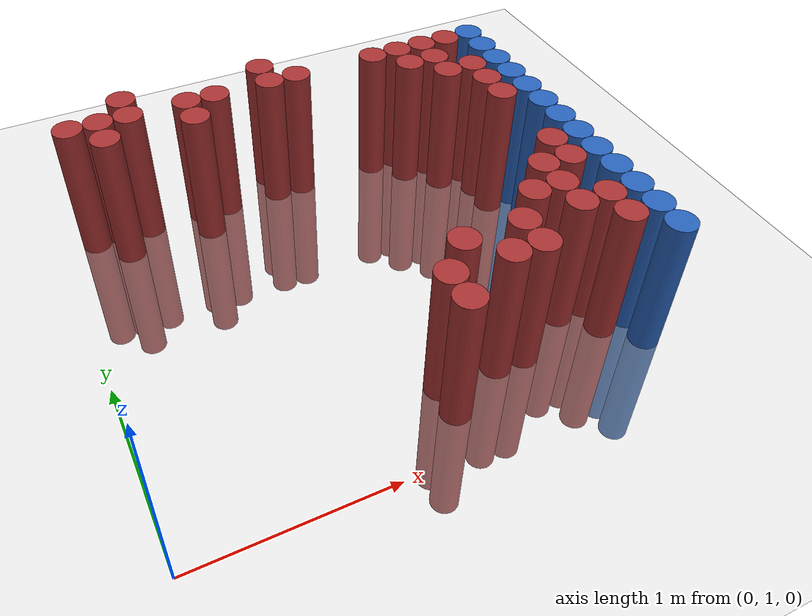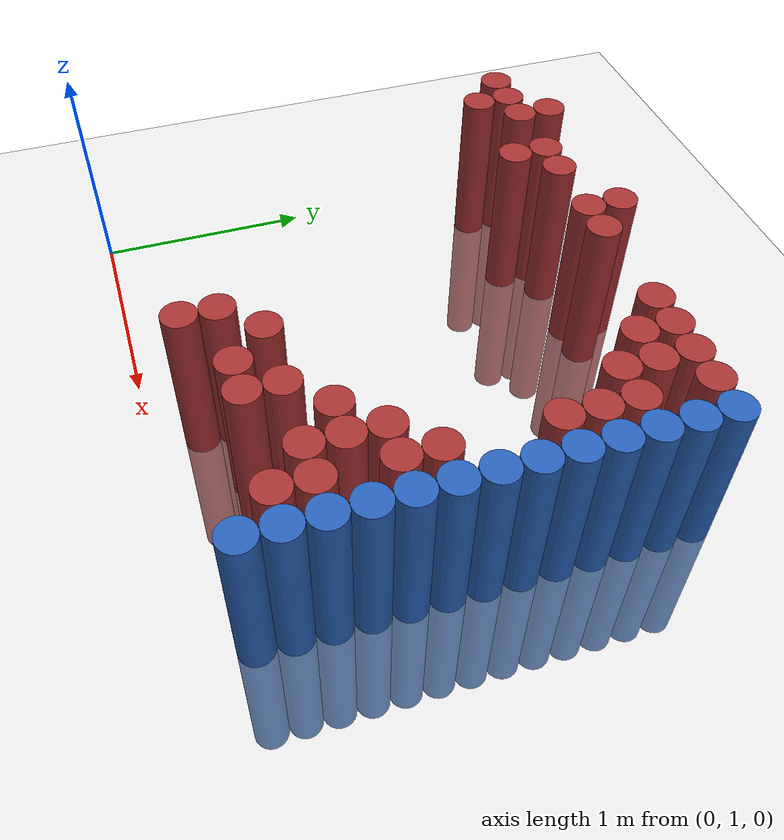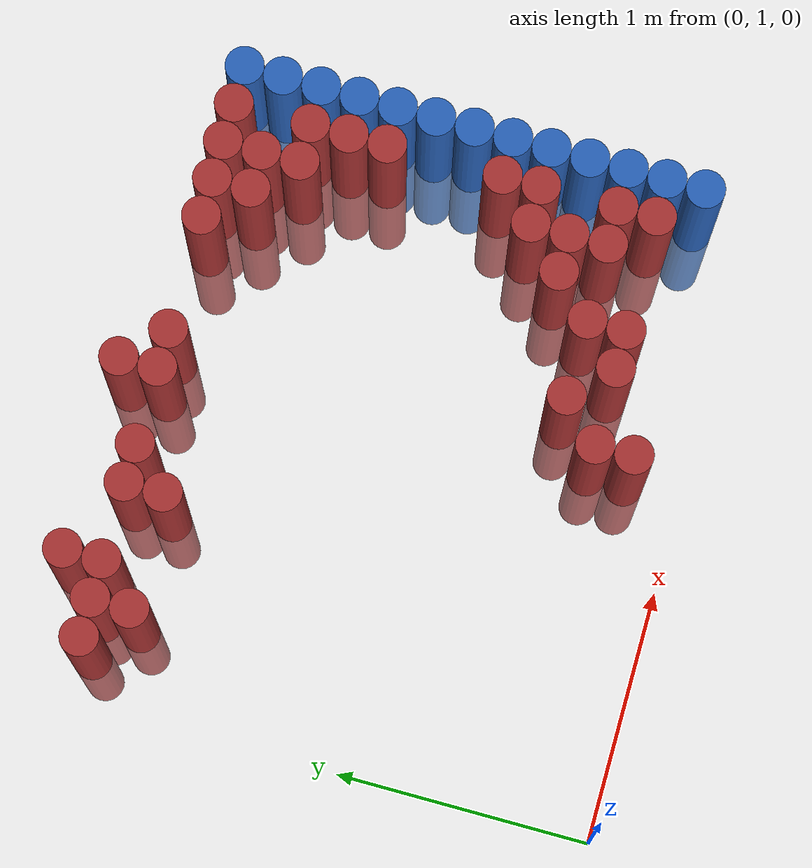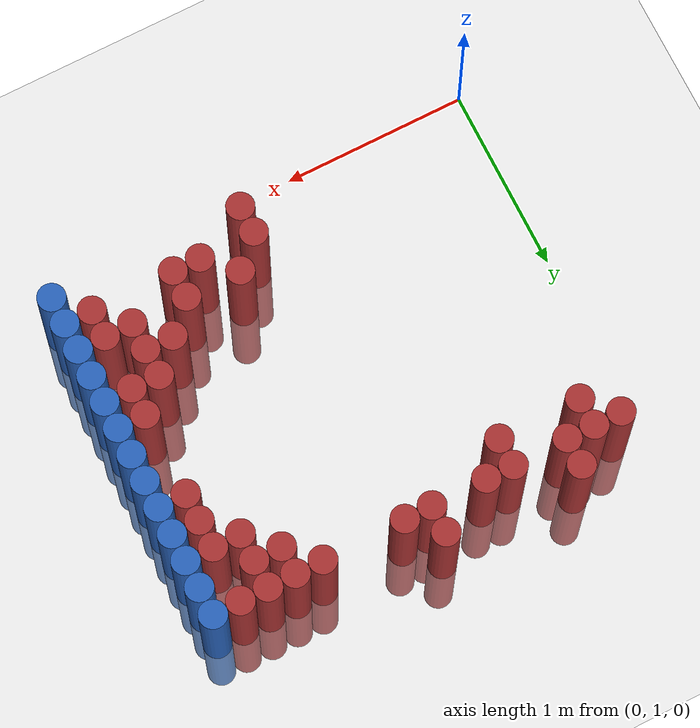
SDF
<sdf version="1.6">
 <world name="default">
  <model name="ground_plane">
   <static>1</static>
   <link name="link">
    <collision name="collision">
     <geometry><plane><normal>0 0 1</normal><size>100 100</size></plane></geometry>
     <surface><friction><ode><mu>100</mu><mu2>50</mu2></ode></friction></surface>
    </collision>
    <visual name="visual">
     <cast_shadows>0</cast_shadows>
     <geometry><plane><normal>0 0 1</normal><size>100 100</size></plane></geometry>
     <material>
      <script><uri>file://media/materials/scripts/gazebo.material</uri><name>Gazebo/Grey</name></script>
     </material>
    </visual>
   </link>
  </model>
  <model name="unit_cylinder_175">
   <static>1</static>
   <pose>0.175000 3.025000 0.000000 0.000000 0.000000 0.000000</pose>
   <link name="link">
    <inertial>
     <mass>1</mass>
     <inertia><ixx>0.145833</ixx><ixy>0</ixy><ixz>0</ixz><iyy>0.145833</iyy><iyz>0</iyz><izz>0.125</izz></inertia>
    </inertial>
    <collision name="collision">
     <geometry><cylinder><radius>0.075000</radius><length>1.5</length></cylinder></geometry>
    </collision>
    <visual name="visual">
     <geometry><cylinder><radius>0.075000</radius><length>1.5</length></cylinder></geometry>
     <material>
      <ambient>0.648000 0.192000 0.192000 1</ambient>
      <diffuse>0.648000 0.192000 0.192000 1</diffuse>
     </material>
     <material>
      <script><name>Gazebo/Grey</name><uri>file://media/materials/scripts/gazebo.material</uri></script>
     </material>
    </visual>
   </link>
  </model>
  <model name="unit_cylinder_178">
   <static>1</static>
   <pose>0.325000 2.875000 0.000000 0.000000 0.000000 0.000000</pose>
   <link name="link">
    <inertial>
     <mass>1</mass>
     <inertia><ixx>0.145833</ixx><ixy>0</ixy><ixz>0</ixz><iyy>0.145833</iyy><iyz>0</iyz><izz>0.125</izz></inertia>
    </inertial>
    <collision name="collision">
     <geometry><cylinder><radius>0.075000</radius><length>1.5</length></cylinder></geometry>
    </collision>
    <visual name="visual">
     <geometry><cylinder><radius>0.075000</radius><length>1.5</length></cylinder></geometry>
     <material>
      <ambient>0.648000 0.192000 0.192000 1</ambient>
      <diffuse>0.648000 0.192000 0.192000 1</diffuse>
     </material>
     <material>
      <script><name>Gazebo/Grey</name><uri>file://media/materials/scripts/gazebo.material</uri></script>
     </material>
    </visual>
   </link>
  </model>
  <model name="unit_cylinder_179">
   <static>1</static>
   <pose>0.325000 3.025000 0.000000 0.000000 0.000000 0.000000</pose>
   <link name="link">
    <inertial>
     <mass>1</mass>
     <inertia><ixx>0.145833</ixx><ixy>0</ixy><ixz>0</ixz><iyy>0.145833</iyy><iyz>0</iyz><izz>0.125</izz></inertia>
    </inertial>
    <collision name="collision">
     <geometry><cylinder><radius>0.075000</radius><length>1.5</length></cylinder></geometry>
    </collision>
    <visual name="visual">
     <geometry><cylinder><radius>0.075000</radius><length>1.5</length></cylinder></geometry>
     <material>
      <ambient>0.648000 0.192000 0.192000 1</ambient>
      <diffuse>0.648000 0.192000 0.192000 1</diffuse>
     </material>
     <material>
      <script><name>Gazebo/Grey</name><uri>file://media/materials/scripts/gazebo.material</uri></script>
     </material>
    </visual>
   </link>
  </model>
  <model name="unit_cylinder_182">
   <static>1</static>
   <pose>0.475000 3.025000 0.000000 0.000000 0.000000 0.000000</pose>
   <link name="link">
    <inertial>
     <mass>1</mass>
     <inertia><ixx>0.145833</ixx><ixy>0</ixy><ixz>0</ixz><iyy>0.145833</iyy><iyz>0</iyz><izz>0.125</izz></inertia>
    </inertial>
    <collision name="collision">
     <geometry><cylinder><radius>0.075000</radius><length>1.5</length></cylinder></geometry>
    </collision>
    <visual name="visual">
     <geometry><cylinder><radius>0.075000</radius><length>1.5</length></cylinder></geometry>
     <material>
      <ambient>0.648000 0.192000 0.192000 1</ambient>
      <diffuse>0.648000 0.192000 0.192000 1</diffuse>
     </material>
     <material>
      <script><name>Gazebo/Grey</name><uri>file://media/materials/scripts/gazebo.material</uri></script>
     </material>
    </visual>
   </link>
  </model>
  <model name="unit_cylinder_183">
   <static>1</static>
   <pose>0.475000 3.175000 0.000000 0.000000 0.000000 0.000000</pose>
   <link name="link">
    <inertial>
     <mass>1</mass>
     <inertia><ixx>0.145833</ixx><ixy>0</ixy><ixz>0</ixz><iyy>0.145833</iyy><iyz>0</iyz><izz>0.125</izz></inertia>
    </inertial>
    <collision name="collision">
     <geometry><cylinder><radius>0.075000</radius><length>1.5</length></cylinder></geometry>
    </collision>
    <visual name="visual">
     <geometry><cylinder><radius>0.075000</radius><length>1.5</length></cylinder></geometry>
     <material>
      <ambient>0.648000 0.192000 0.192000 1</ambient>
      <diffuse>0.648000 0.192000 0.192000 1</diffuse>
     </material>
     <material>
      <script><name>Gazebo/Grey</name><uri>file://media/materials/scripts/gazebo.material</uri></script>
     </material>
    </visual>
   </link>
  </model>
  <model name="unit_cylinder_190">
   <static>1</static>
   <pose>0.775000 2.875000 0.000000 0.000000 0.000000 0.000000</pose>
   <link name="link">
    <inertial>
     <mass>1</mass>
     <inertia><ixx>0.145833</ixx><ixy>0</ixy><ixz>0</ixz><iyy>0.145833</iyy><iyz>0</iyz><izz>0.125</izz></inertia>
    </inertial>
    <collision name="collision">
     <geometry><cylinder><radius>0.075000</radius><length>1.5</length></cylinder></geometry>
    </collision>
    <visual name="visual">
     <geometry><cylinder><radius>0.075000</radius><length>1.5</length></cylinder></geometry>
     <material>
      <ambient>0.648000 0.192000 0.192000 1</ambient>
      <diffuse>0.648000 0.192000 0.192000 1</diffuse>
     </material>
     <material>
      <script><name>Gazebo/Grey</name><uri>file://media/materials/scripts/gazebo.material</uri></script>
     </material>
    </visual>
   </link>
  </model>
  <model name="unit_cylinder_191">
   <static>1</static>
   <pose>0.775000 3.025000 0.000000 0.000000 0.000000 0.000000</pose>
   <link name="link">
    <inertial>
     <mass>1</mass>
     <inertia><ixx>0.145833</ixx><ixy>0</ixy><ixz>0</ixz><iyy>0.145833</iyy><iyz>0</iyz><izz>0.125</izz></inertia>
    </inertial>
    <collision name="collision">
     <geometry><cylinder><radius>0.075000</radius><length>1.5</length></cylinder></geometry>
    </collision>
    <visual name="visual">
     <geometry><cylinder><radius>0.075000</radius><length>1.5</length></cylinder></geometry>
     <material>
      <ambient>0.648000 0.192000 0.192000 1</ambient>
      <diffuse>0.648000 0.192000 0.192000 1</diffuse>
     </material>
     <material>
      <script><name>Gazebo/Grey</name><uri>file://media/materials/scripts/gazebo.material</uri></script>
     </material>
    </visual>
   </link>
  </model>
  <model name="unit_cylinder_197">
   <static>1</static>
   <pose>0.925000 3.025000 0.000000 0.000000 0.000000 0.000000</pose>
   <link name="link">
    <inertial>
     <mass>1</mass>
     <inertia><ixx>0.145833</ixx><ixy>0</ixy><ixz>0</ixz><iyy>0.145833</iyy><iyz>0</iyz><izz>0.125</izz></inertia>
    </inertial>
    <collision name="collision">
     <geometry><cylinder><radius>0.075000</radius><length>1.5</length></cylinder></geometry>
    </collision>
    <visual name="visual">
     <geometry><cylinder><radius>0.075000</radius><length>1.5</length></cylinder></geometry>
     <material>
      <ambient>0.648000 0.192000 0.192000 1</ambient>
      <diffuse>0.648000 0.192000 0.192000 1</diffuse>
     </material>
     <material>
      <script><name>Gazebo/Grey</name><uri>file://media/materials/scripts/gazebo.material</uri></script>
     </material>
    </visual>
   </link>
  </model>
  <model name="unit_cylinder_204">
   <static>1</static>
   <pose>1.225000 3.025000 0.000000 0.000000 0.000000 0.000000</pose>
   <link name="link">
    <inertial>
     <mass>1</mass>
     <inertia><ixx>0.145833</ixx><ixy>0</ixy><ixz>0</ixz><iyy>0.145833</iyy><iyz>0</iyz><izz>0.125</izz></inertia>
    </inertial>
    <collision name="collision">
     <geometry><cylinder><radius>0.075000</radius><length>1.5</length></cylinder></geometry>
    </collision>
    <visual name="visual">
     <geometry><cylinder><radius>0.075000</radius><length>1.5</length></cylinder></geometry>
     <material>
      <ambient>0.648000 0.192000 0.192000 1</ambient>
      <diffuse>0.648000 0.192000 0.192000 1</diffuse>
     </material>
     <material>
      <script><name>Gazebo/Grey</name><uri>file://media/materials/scripts/gazebo.material</uri></script>
     </material>
    </visual>
   </link>
  </model>
  <model name="unit_cylinder_205">
   <static>1</static>
   <pose>1.225000 3.175000 0.000000 0.000000 0.000000 0.000000</pose>
   <link name="link">
    <inertial>
     <mass>1</mass>
     <inertia><ixx>0.145833</ixx><ixy>0</ixy><ixz>0</ixz><iyy>0.145833</iyy><iyz>0</iyz><izz>0.125</izz></inertia>
    </inertial>
    <collision name="collision">
     <geometry><cylinder><radius>0.075000</radius><length>1.5</length></cylinder></geometry>
    </collision>
    <visual name="visual">
     <geometry><cylinder><radius>0.075000</radius><length>1.5</length></cylinder></geometry>
     <material>
      <ambient>0.648000 0.192000 0.192000 1</ambient>
      <diffuse>0.648000 0.192000 0.192000 1</diffuse>
     </material>
     <material>
      <script><name>Gazebo/Grey</name><uri>file://media/materials/scripts/gazebo.material</uri></script>
     </material>
    </visual>
   </link>
  </model>
  <model name="unit_cylinder_209">
   <static>1</static>
   <pose>1.375000 1.225000 0.000000 0.000000 0.000000 0.000000</pose>
   <link name="link">
    <inertial>
     <mass>1</mass>
     <inertia><ixx>0.145833</ixx><ixy>0</ixy><ixz>0</ixz><iyy>0.145833</iyy><iyz>0</iyz><izz>0.125</izz></inertia>
    </inertial>
    <collision name="collision">
     <geometry><cylinder><radius>0.075000</radius><length>1.5</length></cylinder></geometry>
    </collision>
    <visual name="visual">
     <geometry><cylinder><radius>0.075000</radius><length>1.5</length></cylinder></geometry>
     <material>
      <ambient>0.648000 0.192000 0.192000 1</ambient>
      <diffuse>0.648000 0.192000 0.192000 1</diffuse>
     </material>
     <material>
      <script><name>Gazebo/Grey</name><uri>file://media/materials/scripts/gazebo.material</uri></script>
     </material>
    </visual>
   </link>
  </model>
  <model name="unit_cylinder_210">
   <static>1</static>
   <pose>1.375000 1.375000 0.000000 0.000000 0.000000 0.000000</pose>
   <link name="link">
    <inertial>
     <mass>1</mass>
     <inertia><ixx>0.145833</ixx><ixy>0</ixy><ixz>0</ixz><iyy>0.145833</iyy><iyz>0</iyz><izz>0.125</izz></inertia>
    </inertial>
    <collision name="collision">
     <geometry><cylinder><radius>0.075000</radius><length>1.5</length></cylinder></geometry>
    </collision>
    <visual name="visual">
     <geometry><cylinder><radius>0.075000</radius><length>1.5</length></cylinder></geometry>
     <material>
      <ambient>0.648000 0.192000 0.192000 1</ambient>
      <diffuse>0.648000 0.192000 0.192000 1</diffuse>
     </material>
     <material>
      <script><name>Gazebo/Grey</name><uri>file://media/materials/scripts/gazebo.material</uri></script>
     </material>
    </visual>
   </link>
  </model>
  <model name="unit_cylinder_211">
   <static>1</static>
   <pose>1.375000 3.025000 0.000000 0.000000 0.000000 0.000000</pose>
   <link name="link">
    <inertial>
     <mass>1</mass>
     <inertia><ixx>0.145833</ixx><ixy>0</ixy><ixz>0</ixz><iyy>0.145833</iyy><iyz>0</iyz><izz>0.125</izz></inertia>
    </inertial>
    <collision name="collision">
     <geometry><cylinder><radius>0.075000</radius><length>1.5</length></cylinder></geometry>
    </collision>
    <visual name="visual">
     <geometry><cylinder><radius>0.075000</radius><length>1.5</length></cylinder></geometry>
     <material>
      <ambient>0.648000 0.192000 0.192000 1</ambient>
      <diffuse>0.648000 0.192000 0.192000 1</diffuse>
     </material>
     <material>
      <script><name>Gazebo/Grey</name><uri>file://media/materials/scripts/gazebo.material</uri></script>
     </material>
    </visual>
   </link>
  </model>
  <model name="unit_cylinder_214">
   <static>1</static>
   <pose>1.525000 1.525000 0.000000 0.000000 0.000000 0.000000</pose>
   <link name="link">
    <inertial>
     <mass>1</mass>
     <inertia><ixx>0.145833</ixx><ixy>0</ixy><ixz>0</ixz><iyy>0.145833</iyy><iyz>0</iyz><izz>0.125</izz></inertia>
    </inertial>
    <collision name="collision">
     <geometry><cylinder><radius>0.075000</radius><length>1.5</length></cylinder></geometry>
    </collision>
    <visual name="visual">
     <geometry><cylinder><radius>0.075000</radius><length>1.5</length></cylinder></geometry>
     <material>
      <ambient>0.648000 0.192000 0.192000 1</ambient>
      <diffuse>0.648000 0.192000 0.192000 1</diffuse>
     </material>
     <material>
      <script><name>Gazebo/Grey</name><uri>file://media/materials/scripts/gazebo.material</uri></script>
     </material>
    </visual>
   </link>
  </model>
  <model name="unit_cylinder_217">
   <static>1</static>
   <pose>1.675000 1.375000 0.000000 0.000000 0.000000 0.000000</pose>
   <link name="link">
    <inertial>
     <mass>1</mass>
     <inertia><ixx>0.145833</ixx><ixy>0</ixy><ixz>0</ixz><iyy>0.145833</iyy><iyz>0</iyz><izz>0.125</izz></inertia>
    </inertial>
    <collision name="collision">
     <geometry><cylinder><radius>0.075000</radius><length>1.5</length></cylinder></geometry>
    </collision>
    <visual name="visual">
     <geometry><cylinder><radius>0.075000</radius><length>1.5</length></cylinder></geometry>
     <material>
      <ambient>0.648000 0.192000 0.192000 1</ambient>
      <diffuse>0.648000 0.192000 0.192000 1</diffuse>
     </material>
     <material>
      <script><name>Gazebo/Grey</name><uri>file://media/materials/scripts/gazebo.material</uri></script>
     </material>
    </visual>
   </link>
  </model>
  <model name="unit_cylinder_220">
   <static>1</static>
   <pose>1.825000 1.375000 0.000000 0.000000 0.000000 0.000000</pose>
   <link name="link">
    <inertial>
     <mass>1</mass>
     <inertia><ixx>0.145833</ixx><ixy>0</ixy><ixz>0</ixz><iyy>0.145833</iyy><iyz>0</iyz><izz>0.125</izz></inertia>
    </inertial>
    <collision name="collision">
     <geometry><cylinder><radius>0.075000</radius><length>1.5</length></cylinder></geometry>
    </collision>
    <visual name="visual">
     <geometry><cylinder><radius>0.075000</radius><length>1.5</length></cylinder></geometry>
     <material>
      <ambient>0.648000 0.192000 0.192000 1</ambient>
      <diffuse>0.648000 0.192000 0.192000 1</diffuse>
     </material>
     <material>
      <script><name>Gazebo/Grey</name><uri>file://media/materials/scripts/gazebo.material</uri></script>
     </material>
    </visual>
   </link>
  </model>
  <model name="unit_cylinder_221">
   <static>1</static>
   <pose>1.825000 1.525000 0.000000 0.000000 0.000000 0.000000</pose>
   <link name="link">
    <inertial>
     <mass>1</mass>
     <inertia><ixx>0.145833</ixx><ixy>0</ixy><ixz>0</ixz><iyy>0.145833</iyy><iyz>0</iyz><izz>0.125</izz></inertia>
    </inertial>
    <collision name="collision">
     <geometry><cylinder><radius>0.075000</radius><length>1.5</length></cylinder></geometry>
    </collision>
    <visual name="visual">
     <geometry><cylinder><radius>0.075000</radius><length>1.5</length></cylinder></geometry>
     <material>
      <ambient>0.648000 0.192000 0.192000 1</ambient>
      <diffuse>0.648000 0.192000 0.192000 1</diffuse>
     </material>
     <material>
      <script><name>Gazebo/Grey</name><uri>file://media/materials/scripts/gazebo.material</uri></script>
     </material>
    </visual>
   </link>
  </model>
  <model name="unit_cylinder_222">
   <static>1</static>
   <pose>1.825000 3.025000 0.000000 0.000000 0.000000 0.000000</pose>
   <link name="link">
    <inertial>
     <mass>1</mass>
     <inertia><ixx>0.145833</ixx><ixy>0</ixy><ixz>0</ixz><iyy>0.145833</iyy><iyz>0</iyz><izz>0.125</izz></inertia>
    </inertial>
    <collision name="collision">
     <geometry><cylinder><radius>0.075000</radius><length>1.5</length></cylinder></geometry>
    </collision>
    <visual name="visual">
     <geometry><cylinder><radius>0.075000</radius><length>1.5</length></cylinder></geometry>
     <material>
      <ambient>0.648000 0.192000 0.192000 1</ambient>
      <diffuse>0.648000 0.192000 0.192000 1</diffuse>
     </material>
     <material>
      <script><name>Gazebo/Grey</name><uri>file://media/materials/scripts/gazebo.material</uri></script>
     </material>
    </visual>
   </link>
  </model>
  <model name="unit_cylinder_225">
   <static>1</static>
   <pose>1.975000 1.675000 0.000000 0.000000 0.000000 0.000000</pose>
   <link name="link">
    <inertial>
     <mass>1</mass>
     <inertia><ixx>0.145833</ixx><ixy>0</ixy><ixz>0</ixz><iyy>0.145833</iyy><iyz>0</iyz><izz>0.125</izz></inertia>
    </inertial>
    <collision name="collision">
     <geometry><cylinder><radius>0.075000</radius><length>1.5</length></cylinder></geometry>
    </collision>
    <visual name="visual">
     <geometry><cylinder><radius>0.075000</radius><length>1.5</length></cylinder></geometry>
     <material>
      <ambient>0.648000 0.192000 0.192000 1</ambient>
      <diffuse>0.648000 0.192000 0.192000 1</diffuse>
     </material>
     <material>
      <script><name>Gazebo/Grey</name><uri>file://media/materials/scripts/gazebo.material</uri></script>
     </material>
    </visual>
   </link>
  </model>
  <model name="unit_cylinder_226">
   <static>1</static>
   <pose>1.975000 2.875000 0.000000 0.000000 0.000000 0.000000</pose>
   <link name="link">
    <inertial>
     <mass>1</mass>
     <inertia><ixx>0.145833</ixx><ixy>0</ixy><ixz>0</ixz><iyy>0.145833</iyy><iyz>0</iyz><izz>0.125</izz></inertia>
    </inertial>
    <collision name="collision">
     <geometry><cylinder><radius>0.075000</radius><length>1.5</length></cylinder></geometry>
    </collision>
    <visual name="visual">
     <geometry><cylinder><radius>0.075000</radius><length>1.5</length></cylinder></geometry>
     <material>
      <ambient>0.648000 0.192000 0.192000 1</ambient>
      <diffuse>0.648000 0.192000 0.192000 1</diffuse>
     </material>
     <material>
      <script><name>Gazebo/Grey</name><uri>file://media/materials/scripts/gazebo.material</uri></script>
     </material>
    </visual>
   </link>
  </model>
  <model name="unit_cylinder_227">
   <static>1</static>
   <pose>1.975000 3.025000 0.000000 0.000000 0.000000 0.000000</pose>
   <link name="link">
    <inertial>
     <mass>1</mass>
     <inertia><ixx>0.145833</ixx><ixy>0</ixy><ixz>0</ixz><iyy>0.145833</iyy><iyz>0</iyz><izz>0.125</izz></inertia>
    </inertial>
    <collision name="collision">
     <geometry><cylinder><radius>0.075000</radius><length>1.5</length></cylinder></geometry>
    </collision>
    <visual name="visual">
     <geometry><cylinder><radius>0.075000</radius><length>1.5</length></cylinder></geometry>
     <material>
      <ambient>0.648000 0.192000 0.192000 1</ambient>
      <diffuse>0.648000 0.192000 0.192000 1</diffuse>
     </material>
     <material>
      <script><name>Gazebo/Grey</name><uri>file://media/materials/scripts/gazebo.material</uri></script>
     </material>
    </visual>
   </link>
  </model>
  <model name="unit_cylinder_233">
   <static>1</static>
   <pose>2.125000 1.525000 0.000000 0.000000 0.000000 0.000000</pose>
   <link name="link">
    <inertial>
     <mass>1</mass>
     <inertia><ixx>0.145833</ixx><ixy>0</ixy><ixz>0</ixz><iyy>0.145833</iyy><iyz>0</iyz><izz>0.125</izz></inertia>
    </inertial>
    <collision name="collision">
     <geometry><cylinder><radius>0.075000</radius><length>1.5</length></cylinder></geometry>
    </collision>
    <visual name="visual">
     <geometry><cylinder><radius>0.075000</radius><length>1.5</length></cylinder></geometry>
     <material>
      <ambient>0.648000 0.192000 0.192000 1</ambient>
      <diffuse>0.648000 0.192000 0.192000 1</diffuse>
     </material>
     <material>
      <script><name>Gazebo/Grey</name><uri>file://media/materials/scripts/gazebo.material</uri></script>
     </material>
    </visual>
   </link>
  </model>
  <model name="unit_cylinder_234">
   <static>1</static>
   <pose>2.125000 1.675000 0.000000 0.000000 0.000000 0.000000</pose>
   <link name="link">
    <inertial>
     <mass>1</mass>
     <inertia><ixx>0.145833</ixx><ixy>0</ixy><ixz>0</ixz><iyy>0.145833</iyy><iyz>0</iyz><izz>0.125</izz></inertia>
    </inertial>
    <collision name="collision">
     <geometry><cylinder><radius>0.075000</radius><length>1.5</length></cylinder></geometry>
    </collision>
    <visual name="visual">
     <geometry><cylinder><radius>0.075000</radius><length>1.5</length></cylinder></geometry>
     <material>
      <ambient>0.648000 0.192000 0.192000 1</ambient>
      <diffuse>0.648000 0.192000 0.192000 1</diffuse>
     </material>
     <material>
      <script><name>Gazebo/Grey</name><uri>file://media/materials/scripts/gazebo.material</uri></script>
     </material>
    </visual>
   </link>
  </model>
  <model name="unit_cylinder_235">
   <static>1</static>
   <pose>2.125000 1.825000 0.000000 0.000000 0.000000 0.000000</pose>
   <link name="link">
    <inertial>
     <mass>1</mass>
     <inertia><ixx>0.145833</ixx><ixy>0</ixy><ixz>0</ixz><iyy>0.145833</iyy><iyz>0</iyz><izz>0.125</izz></inertia>
    </inertial>
    <collision name="collision">
     <geometry><cylinder><radius>0.075000</radius><length>1.5</length></cylinder></geometry>
    </collision>
    <visual name="visual">
     <geometry><cylinder><radius>0.075000</radius><length>1.5</length></cylinder></geometry>
     <material>
      <ambient>0.648000 0.192000 0.192000 1</ambient>
      <diffuse>0.648000 0.192000 0.192000 1</diffuse>
     </material>
     <material>
      <script><name>Gazebo/Grey</name><uri>file://media/materials/scripts/gazebo.material</uri></script>
     </material>
    </visual>
   </link>
  </model>
  <model name="unit_cylinder_236">
   <static>1</static>
   <pose>2.125000 2.725000 0.000000 0.000000 0.000000 0.000000</pose>
   <link name="link">
    <inertial>
     <mass>1</mass>
     <inertia><ixx>0.145833</ixx><ixy>0</ixy><ixz>0</ixz><iyy>0.145833</iyy><iyz>0</iyz><izz>0.125</izz></inertia>
    </inertial>
    <collision name="collision">
     <geometry><cylinder><radius>0.075000</radius><length>1.5</length></cylinder></geometry>
    </collision>
    <visual name="visual">
     <geometry><cylinder><radius>0.075000</radius><length>1.5</length></cylinder></geometry>
     <material>
      <ambient>0.648000 0.192000 0.192000 1</ambient>
      <diffuse>0.648000 0.192000 0.192000 1</diffuse>
     </material>
     <material>
      <script><name>Gazebo/Grey</name><uri>file://media/materials/scripts/gazebo.material</uri></script>
     </material>
    </visual>
   </link>
  </model>
  <model name="unit_cylinder_237">
   <static>1</static>
   <pose>2.125000 2.875000 0.000000 0.000000 0.000000 0.000000</pose>
   <link name="link">
    <inertial>
     <mass>1</mass>
     <inertia><ixx>0.145833</ixx><ixy>0</ixy><ixz>0</ixz><iyy>0.145833</iyy><iyz>0</iyz><izz>0.125</izz></inertia>
    </inertial>
    <collision name="collision">
     <geometry><cylinder><radius>0.075000</radius><length>1.5</length></cylinder></geometry>
    </collision>
    <visual name="visual">
     <geometry><cylinder><radius>0.075000</radius><length>1.5</length></cylinder></geometry>
     <material>
      <ambient>0.648000 0.192000 0.192000 1</ambient>
      <diffuse>0.648000 0.192000 0.192000 1</diffuse>
     </material>
     <material>
      <script><name>Gazebo/Grey</name><uri>file://media/materials/scripts/gazebo.material</uri></script>
     </material>
    </visual>
   </link>
  </model>
  <model name="unit_cylinder_238">
   <static>1</static>
   <pose>2.125000 3.025000 0.000000 0.000000 0.000000 0.000000</pose>
   <link name="link">
    <inertial>
     <mass>1</mass>
     <inertia><ixx>0.145833</ixx><ixy>0</ixy><ixz>0</ixz><iyy>0.145833</iyy><iyz>0</iyz><izz>0.125</izz></inertia>
    </inertial>
    <collision name="collision">
     <geometry><cylinder><radius>0.075000</radius><length>1.5</length></cylinder></geometry>
    </collision>
    <visual name="visual">
     <geometry><cylinder><radius>0.075000</radius><length>1.5</length></cylinder></geometry>
     <material>
      <ambient>0.648000 0.192000 0.192000 1</ambient>
      <diffuse>0.648000 0.192000 0.192000 1</diffuse>
     </material>
     <material>
      <script><name>Gazebo/Grey</name><uri>file://media/materials/scripts/gazebo.material</uri></script>
     </material>
    </visual>
   </link>
  </model>
  <model name="unit_cylinder_244">
   <static>1</static>
   <pose>2.275000 1.375000 0.000000 0.000000 0.000000 0.000000</pose>
   <link name="link">
    <inertial>
     <mass>1</mass>
     <inertia><ixx>0.145833</ixx><ixy>0</ixy><ixz>0</ixz><iyy>0.145833</iyy><iyz>0</iyz><izz>0.125</izz></inertia>
    </inertial>
    <collision name="collision">
     <geometry><cylinder><radius>0.075000</radius><length>1.5</length></cylinder></geometry>
    </collision>
    <visual name="visual">
     <geometry><cylinder><radius>0.075000</radius><length>1.5</length></cylinder></geometry>
     <material>
      <ambient>0.648000 0.192000 0.192000 1</ambient>
      <diffuse>0.648000 0.192000 0.192000 1</diffuse>
     </material>
     <material>
      <script><name>Gazebo/Grey</name><uri>file://media/materials/scripts/gazebo.material</uri></script>
     </material>
    </visual>
   </link>
  </model>
  <model name="unit_cylinder_245">
   <static>1</static>
   <pose>2.275000 1.525000 0.000000 0.000000 0.000000 0.000000</pose>
   <link name="link">
    <inertial>
     <mass>1</mass>
     <inertia><ixx>0.145833</ixx><ixy>0</ixy><ixz>0</ixz><iyy>0.145833</iyy><iyz>0</iyz><izz>0.125</izz></inertia>
    </inertial>
    <collision name="collision">
     <geometry><cylinder><radius>0.075000</radius><length>1.5</length></cylinder></geometry>
    </collision>
    <visual name="visual">
     <geometry><cylinder><radius>0.075000</radius><length>1.5</length></cylinder></geometry>
     <material>
      <ambient>0.648000 0.192000 0.192000 1</ambient>
      <diffuse>0.648000 0.192000 0.192000 1</diffuse>
     </material>
     <material>
      <script><name>Gazebo/Grey</name><uri>file://media/materials/scripts/gazebo.material</uri></script>
     </material>
    </visual>
   </link>
  </model>
  <model name="unit_cylinder_246">
   <static>1</static>
   <pose>2.275000 1.825000 0.000000 0.000000 0.000000 0.000000</pose>
   <link name="link">
    <inertial>
     <mass>1</mass>
     <inertia><ixx>0.145833</ixx><ixy>0</ixy><ixz>0</ixz><iyy>0.145833</iyy><iyz>0</iyz><izz>0.125</izz></inertia>
    </inertial>
    <collision name="collision">
     <geometry><cylinder><radius>0.075000</radius><length>1.5</length></cylinder></geometry>
    </collision>
    <visual name="visual">
     <geometry><cylinder><radius>0.075000</radius><length>1.5</length></cylinder></geometry>
     <material>
      <ambient>0.648000 0.192000 0.192000 1</ambient>
      <diffuse>0.648000 0.192000 0.192000 1</diffuse>
     </material>
     <material>
      <script><name>Gazebo/Grey</name><uri>file://media/materials/scripts/gazebo.material</uri></script>
     </material>
    </visual>
   </link>
  </model>
  <model name="unit_cylinder_247">
   <static>1</static>
   <pose>2.275000 1.975000 0.000000 0.000000 0.000000 0.000000</pose>
   <link name="link">
    <inertial>
     <mass>1</mass>
     <inertia><ixx>0.145833</ixx><ixy>0</ixy><ixz>0</ixz><iyy>0.145833</iyy><iyz>0</iyz><izz>0.125</izz></inertia>
    </inertial>
    <collision name="collision">
     <geometry><cylinder><radius>0.075000</radius><length>1.5</length></cylinder></geometry>
    </collision>
    <visual name="visual">
     <geometry><cylinder><radius>0.075000</radius><length>1.5</length></cylinder></geometry>
     <material>
      <ambient>0.648000 0.192000 0.192000 1</ambient>
      <diffuse>0.648000 0.192000 0.192000 1</diffuse>
     </material>
     <material>
      <script><name>Gazebo/Grey</name><uri>file://media/materials/scripts/gazebo.material</uri></script>
     </material>
    </visual>
   </link>
  </model>
  <model name="unit_cylinder_248">
   <static>1</static>
   <pose>2.275000 2.425000 0.000000 0.000000 0.000000 0.000000</pose>
   <link name="link">
    <inertial>
     <mass>1</mass>
     <inertia><ixx>0.145833</ixx><ixy>0</ixy><ixz>0</ixz><iyy>0.145833</iyy><iyz>0</iyz><izz>0.125</izz></inertia>
    </inertial>
    <collision name="collision">
     <geometry><cylinder><radius>0.075000</radius><length>1.5</length></cylinder></geometry>
    </collision>
    <visual name="visual">
     <geometry><cylinder><radius>0.075000</radius><length>1.5</length></cylinder></geometry>
     <material>
      <ambient>0.648000 0.192000 0.192000 1</ambient>
      <diffuse>0.648000 0.192000 0.192000 1</diffuse>
     </material>
     <material>
      <script><name>Gazebo/Grey</name><uri>file://media/materials/scripts/gazebo.material</uri></script>
     </material>
    </visual>
   </link>
  </model>
  <model name="unit_cylinder_249">
   <static>1</static>
   <pose>2.275000 2.575000 0.000000 0.000000 0.000000 0.000000</pose>
   <link name="link">
    <inertial>
     <mass>1</mass>
     <inertia><ixx>0.145833</ixx><ixy>0</ixy><ixz>0</ixz><iyy>0.145833</iyy><iyz>0</iyz><izz>0.125</izz></inertia>
    </inertial>
    <collision name="collision">
     <geometry><cylinder><radius>0.075000</radius><length>1.5</length></cylinder></geometry>
    </collision>
    <visual name="visual">
     <geometry><cylinder><radius>0.075000</radius><length>1.5</length></cylinder></geometry>
     <material>
      <ambient>0.648000 0.192000 0.192000 1</ambient>
      <diffuse>0.648000 0.192000 0.192000 1</diffuse>
     </material>
     <material>
      <script><name>Gazebo/Grey</name><uri>file://media/materials/scripts/gazebo.material</uri></script>
     </material>
    </visual>
   </link>
  </model>
  <model name="unit_cylinder_250">
   <static>1</static>
   <pose>2.275000 2.725000 0.000000 0.000000 0.000000 0.000000</pose>
   <link name="link">
    <inertial>
     <mass>1</mass>
     <inertia><ixx>0.145833</ixx><ixy>0</ixy><ixz>0</ixz><iyy>0.145833</iyy><iyz>0</iyz><izz>0.125</izz></inertia>
    </inertial>
    <collision name="collision">
     <geometry><cylinder><radius>0.075000</radius><length>1.5</length></cylinder></geometry>
    </collision>
    <visual name="visual">
     <geometry><cylinder><radius>0.075000</radius><length>1.5</length></cylinder></geometry>
     <material>
      <ambient>0.648000 0.192000 0.192000 1</ambient>
      <diffuse>0.648000 0.192000 0.192000 1</diffuse>
     </material>
     <material>
      <script><name>Gazebo/Grey</name><uri>file://media/materials/scripts/gazebo.material</uri></script>
     </material>
    </visual>
   </link>
  </model>
  <model name="unit_cylinder_251">
   <static>1</static>
   <pose>2.275000 3.025000 0.000000 0.000000 0.000000 0.000000</pose>
   <link name="link">
    <inertial>
     <mass>1</mass>
     <inertia><ixx>0.145833</ixx><ixy>0</ixy><ixz>0</ixz><iyy>0.145833</iyy><iyz>0</iyz><izz>0.125</izz></inertia>
    </inertial>
    <collision name="collision">
     <geometry><cylinder><radius>0.075000</radius><length>1.5</length></cylinder></geometry>
    </collision>
    <visual name="visual">
     <geometry><cylinder><radius>0.075000</radius><length>1.5</length></cylinder></geometry>
     <material>
      <ambient>0.648000 0.192000 0.192000 1</ambient>
      <diffuse>0.648000 0.192000 0.192000 1</diffuse>
     </material>
     <material>
      <script><name>Gazebo/Grey</name><uri>file://media/materials/scripts/gazebo.material</uri></script>
     </material>
    </visual>
   </link>
  </model>
  <model name="unit_cylinder_264">
   <static>1</static>
   <pose>2.425000 1.225000 0.000000 0.000000 0.000000 0.000000</pose>
   <link name="link">
    <inertial>
     <mass>1</mass>
     <inertia><ixx>0.145833</ixx><ixy>0</ixy><ixz>0</ixz><iyy>0.145833</iyy><iyz>0</iyz><izz>0.125</izz></inertia>
    </inertial>
    <collision name="collision">
     <geometry><cylinder><radius>0.075000</radius><length>1.5</length></cylinder></geometry>
    </collision>
    <visual name="visual">
     <geometry><cylinder><radius>0.075000</radius><length>1.5</length></cylinder></geometry>
     <material>
      <ambient>0.152000 0.379000 0.720000 1</ambient>
      <diffuse>0.152000 0.379000 0.720000 1</diffuse>
     </material>
     <material>
      <script><name>Gazebo/Grey</name><uri>file://media/materials/scripts/gazebo.material</uri></script>
     </material>
    </visual>
   </link>
  </model>
  <model name="unit_cylinder_265">
   <static>1</static>
   <pose>2.425000 1.375000 0.000000 0.000000 0.000000 0.000000</pose>
   <link name="link">
    <inertial>
     <mass>1</mass>
     <inertia><ixx>0.145833</ixx><ixy>0</ixy><ixz>0</ixz><iyy>0.145833</iyy><iyz>0</iyz><izz>0.125</izz></inertia>
    </inertial>
    <collision name="collision">
     <geometry><cylinder><radius>0.075000</radius><length>1.5</length></cylinder></geometry>
    </collision>
    <visual name="visual">
     <geometry><cylinder><radius>0.075000</radius><length>1.5</length></cylinder></geometry>
     <material>
      <ambient>0.152000 0.379000 0.720000 1</ambient>
      <diffuse>0.152000 0.379000 0.720000 1</diffuse>
     </material>
     <material>
      <script><name>Gazebo/Grey</name><uri>file://media/materials/scripts/gazebo.material</uri></script>
     </material>
    </visual>
   </link>
  </model>
  <model name="unit_cylinder_266">
   <static>1</static>
   <pose>2.425000 1.525000 0.000000 0.000000 0.000000 0.000000</pose>
   <link name="link">
    <inertial>
     <mass>1</mass>
     <inertia><ixx>0.145833</ixx><ixy>0</ixy><ixz>0</ixz><iyy>0.145833</iyy><iyz>0</iyz><izz>0.125</izz></inertia>
    </inertial>
    <collision name="collision">
     <geometry><cylinder><radius>0.075000</radius><length>1.5</length></cylinder></geometry>
    </collision>
    <visual name="visual">
     <geometry><cylinder><radius>0.075000</radius><length>1.5</length></cylinder></geometry>
     <material>
      <ambient>0.152000 0.379000 0.720000 1</ambient>
      <diffuse>0.152000 0.379000 0.720000 1</diffuse>
     </material>
     <material>
      <script><name>Gazebo/Grey</name><uri>file://media/materials/scripts/gazebo.material</uri></script>
     </material>
    </visual>
   </link>
  </model>
  <model name="unit_cylinder_267">
   <static>1</static>
   <pose>2.425000 1.675000 0.000000 0.000000 0.000000 0.000000</pose>
   <link name="link">
    <inertial>
     <mass>1</mass>
     <inertia><ixx>0.145833</ixx><ixy>0</ixy><ixz>0</ixz><iyy>0.145833</iyy><iyz>0</iyz><izz>0.125</izz></inertia>
    </inertial>
    <collision name="collision">
     <geometry><cylinder><radius>0.075000</radius><length>1.5</length></cylinder></geometry>
    </collision>
    <visual name="visual">
     <geometry><cylinder><radius>0.075000</radius><length>1.5</length></cylinder></geometry>
     <material>
      <ambient>0.152000 0.379000 0.720000 1</ambient>
      <diffuse>0.152000 0.379000 0.720000 1</diffuse>
     </material>
     <material>
      <script><name>Gazebo/Grey</name><uri>file://media/materials/scripts/gazebo.material</uri></script>
     </material>
    </visual>
   </link>
  </model>
  <model name="unit_cylinder_268">
   <static>1</static>
   <pose>2.425000 1.825000 0.000000 0.000000 0.000000 0.000000</pose>
   <link name="link">
    <inertial>
     <mass>1</mass>
     <inertia><ixx>0.145833</ixx><ixy>0</ixy><ixz>0</ixz><iyy>0.145833</iyy><iyz>0</iyz><izz>0.125</izz></inertia>
    </inertial>
    <collision name="collision">
     <geometry><cylinder><radius>0.075000</radius><length>1.5</length></cylinder></geometry>
    </collision>
    <visual name="visual">
     <geometry><cylinder><radius>0.075000</radius><length>1.5</length></cylinder></geometry>
     <material>
      <ambient>0.152000 0.379000 0.720000 1</ambient>
      <diffuse>0.152000 0.379000 0.720000 1</diffuse>
     </material>
     <material>
      <script><name>Gazebo/Grey</name><uri>file://media/materials/scripts/gazebo.material</uri></script>
     </material>
    </visual>
   </link>
  </model>
  <model name="unit_cylinder_269">
   <static>1</static>
   <pose>2.425000 1.975000 0.000000 0.000000 0.000000 0.000000</pose>
   <link name="link">
    <inertial>
     <mass>1</mass>
     <inertia><ixx>0.145833</ixx><ixy>0</ixy><ixz>0</ixz><iyy>0.145833</iyy><iyz>0</iyz><izz>0.125</izz></inertia>
    </inertial>
    <collision name="collision">
     <geometry><cylinder><radius>0.075000</radius><length>1.5</length></cylinder></geometry>
    </collision>
    <visual name="visual">
     <geometry><cylinder><radius>0.075000</radius><length>1.5</length></cylinder></geometry>
     <material>
      <ambient>0.152000 0.379000 0.720000 1</ambient>
      <diffuse>0.152000 0.379000 0.720000 1</diffuse>
     </material>
     <material>
      <script><name>Gazebo/Grey</name><uri>file://media/materials/scripts/gazebo.material</uri></script>
     </material>
    </visual>
   </link>
  </model>
  <model name="unit_cylinder_270">
   <static>1</static>
   <pose>2.425000 2.125000 0.000000 0.000000 0.000000 0.000000</pose>
   <link name="link">
    <inertial>
     <mass>1</mass>
     <inertia><ixx>0.145833</ixx><ixy>0</ixy><ixz>0</ixz><iyy>0.145833</iyy><iyz>0</iyz><izz>0.125</izz></inertia>
    </inertial>
    <collision name="collision">
     <geometry><cylinder><radius>0.075000</radius><length>1.5</length></cylinder></geometry>
    </collision>
    <visual name="visual">
     <geometry><cylinder><radius>0.075000</radius><length>1.5</length></cylinder></geometry>
     <material>
      <ambient>0.152000 0.379000 0.720000 1</ambient>
      <diffuse>0.152000 0.379000 0.720000 1</diffuse>
     </material>
     <material>
      <script><name>Gazebo/Grey</name><uri>file://media/materials/scripts/gazebo.material</uri></script>
     </material>
    </visual>
   </link>
  </model>
  <model name="unit_cylinder_271">
   <static>1</static>
   <pose>2.425000 2.275000 0.000000 0.000000 0.000000 0.000000</pose>
   <link name="link">
    <inertial>
     <mass>1</mass>
     <inertia><ixx>0.145833</ixx><ixy>0</ixy><ixz>0</ixz><iyy>0.145833</iyy><iyz>0</iyz><izz>0.125</izz></inertia>
    </inertial>
    <collision name="collision">
     <geometry><cylinder><radius>0.075000</radius><length>1.5</length></cylinder></geometry>
    </collision>
    <visual name="visual">
     <geometry><cylinder><radius>0.075000</radius><length>1.5</length></cylinder></geometry>
     <material>
      <ambient>0.152000 0.379000 0.720000 1</ambient>
      <diffuse>0.152000 0.379000 0.720000 1</diffuse>
     </material>
     <material>
      <script><name>Gazebo/Grey</name><uri>file://media/materials/scripts/gazebo.material</uri></script>
     </material>
    </visual>
   </link>
  </model>
  <model name="unit_cylinder_272">
   <static>1</static>
   <pose>2.425000 2.425000 0.000000 0.000000 0.000000 0.000000</pose>
   <link name="link">
    <inertial>
     <mass>1</mass>
     <inertia><ixx>0.145833</ixx><ixy>0</ixy><ixz>0</ixz><iyy>0.145833</iyy><iyz>0</iyz><izz>0.125</izz></inertia>
    </inertial>
    <collision name="collision">
     <geometry><cylinder><radius>0.075000</radius><length>1.5</length></cylinder></geometry>
    </collision>
    <visual name="visual">
     <geometry><cylinder><radius>0.075000</radius><length>1.5</length></cylinder></geometry>
     <material>
      <ambient>0.152000 0.379000 0.720000 1</ambient>
      <diffuse>0.152000 0.379000 0.720000 1</diffuse>
     </material>
     <material>
      <script><name>Gazebo/Grey</name><uri>file://media/materials/scripts/gazebo.material</uri></script>
     </material>
    </visual>
   </link>
  </model>
  <model name="unit_cylinder_273">
   <static>1</static>
   <pose>2.425000 2.575000 0.000000 0.000000 0.000000 0.000000</pose>
   <link name="link">
    <inertial>
     <mass>1</mass>
     <inertia><ixx>0.145833</ixx><ixy>0</ixy><ixz>0</ixz><iyy>0.145833</iyy><iyz>0</iyz><izz>0.125</izz></inertia>
    </inertial>
    <collision name="collision">
     <geometry><cylinder><radius>0.075000</radius><length>1.5</length></cylinder></geometry>
    </collision>
    <visual name="visual">
     <geometry><cylinder><radius>0.075000</radius><length>1.5</length></cylinder></geometry>
     <material>
      <ambient>0.152000 0.379000 0.720000 1</ambient>
      <diffuse>0.152000 0.379000 0.720000 1</diffuse>
     </material>
     <material>
      <script><name>Gazebo/Grey</name><uri>file://media/materials/scripts/gazebo.material</uri></script>
     </material>
    </visual>
   </link>
  </model>
  <model name="unit_cylinder_274">
   <static>1</static>
   <pose>2.425000 2.725000 0.000000 0.000000 0.000000 0.000000</pose>
   <link name="link">
    <inertial>
     <mass>1</mass>
     <inertia><ixx>0.145833</ixx><ixy>0</ixy><ixz>0</ixz><iyy>0.145833</iyy><iyz>0</iyz><izz>0.125</izz></inertia>
    </inertial>
    <collision name="collision">
     <geometry><cylinder><radius>0.075000</radius><length>1.5</length></cylinder></geometry>
    </collision>
    <visual name="visual">
     <geometry><cylinder><radius>0.075000</radius><length>1.5</length></cylinder></geometry>
     <material>
      <ambient>0.152000 0.379000 0.720000 1</ambient>
      <diffuse>0.152000 0.379000 0.720000 1</diffuse>
     </material>
     <material>
      <script><name>Gazebo/Grey</name><uri>file://media/materials/scripts/gazebo.material</uri></script>
     </material>
    </visual>
   </link>
  </model>
  <model name="unit_cylinder_275">
   <static>1</static>
   <pose>2.425000 2.875000 0.000000 0.000000 0.000000 0.000000</pose>
   <link name="link">
    <inertial>
     <mass>1</mass>
     <inertia><ixx>0.145833</ixx><ixy>0</ixy><ixz>0</ixz><iyy>0.145833</iyy><iyz>0</iyz><izz>0.125</izz></inertia>
    </inertial>
    <collision name="collision">
     <geometry><cylinder><radius>0.075000</radius><length>1.5</length></cylinder></geometry>
    </collision>
    <visual name="visual">
     <geometry><cylinder><radius>0.075000</radius><length>1.5</length></cylinder></geometry>
     <material>
      <ambient>0.152000 0.379000 0.720000 1</ambient>
      <diffuse>0.152000 0.379000 0.720000 1</diffuse>
     </material>
     <material>
      <script><name>Gazebo/Grey</name><uri>file://media/materials/scripts/gazebo.material</uri></script>
     </material>
    </visual>
   </link>
  </model>
  <model name="unit_cylinder_276">
   <static>1</static>
   <pose>2.425000 3.025000 0.000000 0.000000 0.000000 0.000000</pose>
   <link name="link">
    <inertial>
     <mass>1</mass>
     <inertia><ixx>0.145833</ixx><ixy>0</ixy><ixz>0</ixz><iyy>0.145833</iyy><iyz>0</iyz><izz>0.125</izz></inertia>
    </inertial>
    <collision name="collision">
     <geometry><cylinder><radius>0.075000</radius><length>1.5</length></cylinder></geometry>
    </collision>
    <visual name="visual">
     <geometry><cylinder><radius>0.075000</radius><length>1.5</length></cylinder></geometry>
     <material>
      <ambient>0.152000 0.379000 0.720000 1</ambient>
      <diffuse>0.152000 0.379000 0.720000 1</diffuse>
     </material>
     <material>
      <script><name>Gazebo/Grey</name><uri>file://media/materials/scripts/gazebo.material</uri></script>
     </material>
    </visual>
   </link>
  </model>
 </world>
</sdf>
